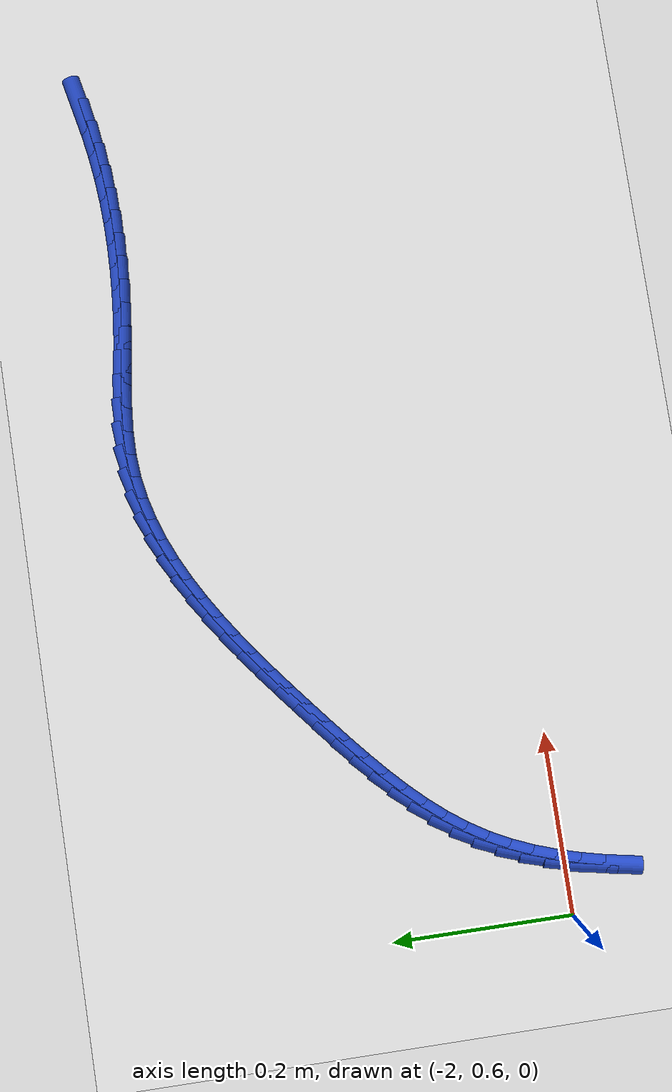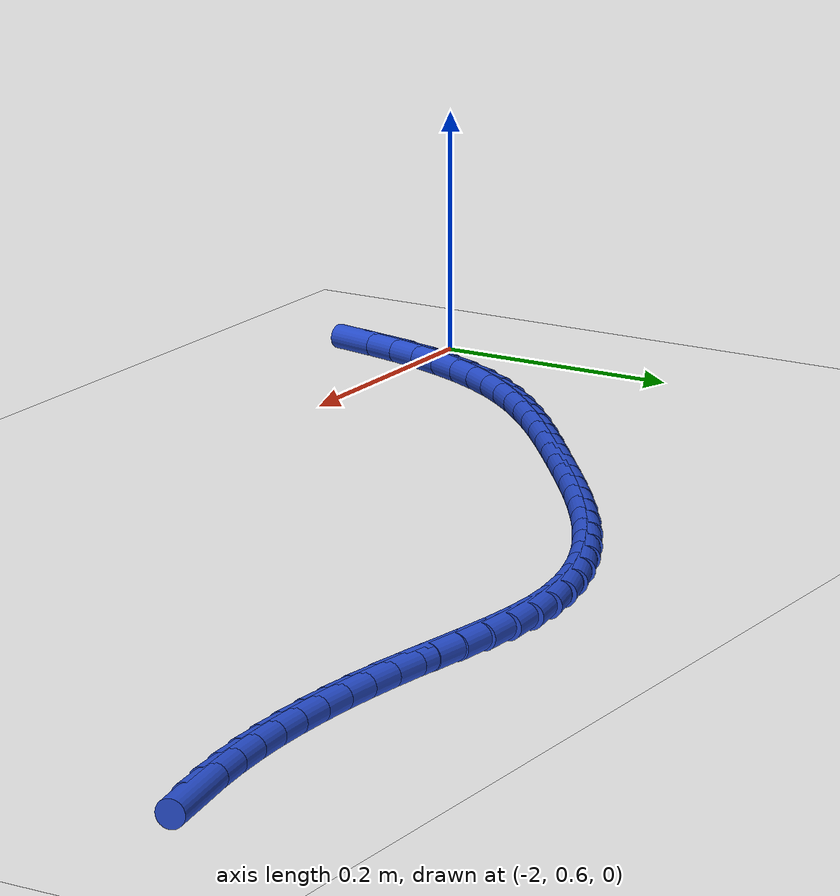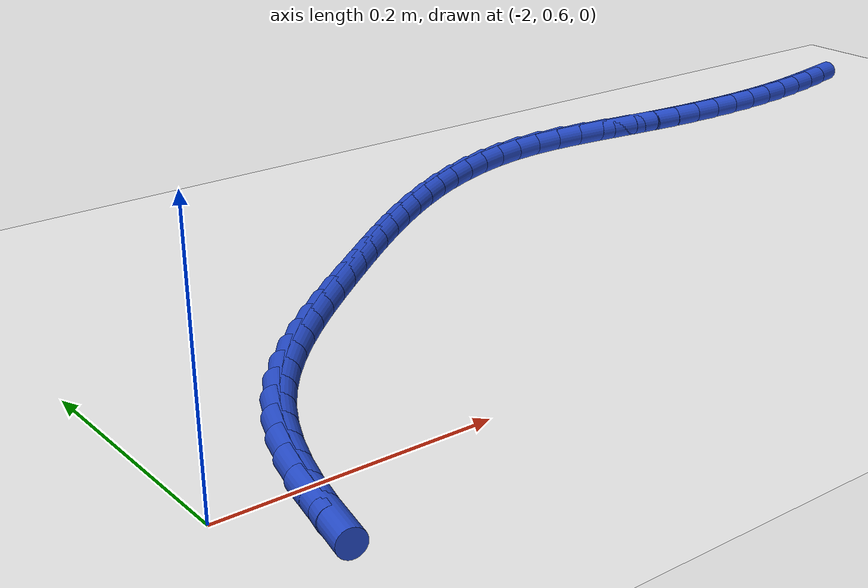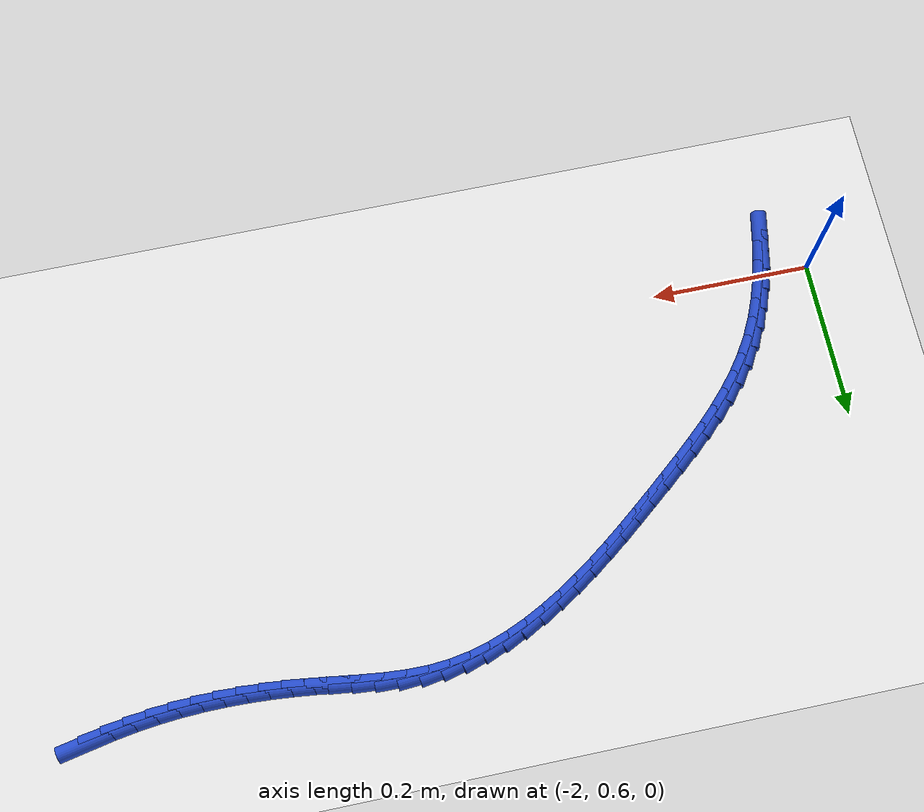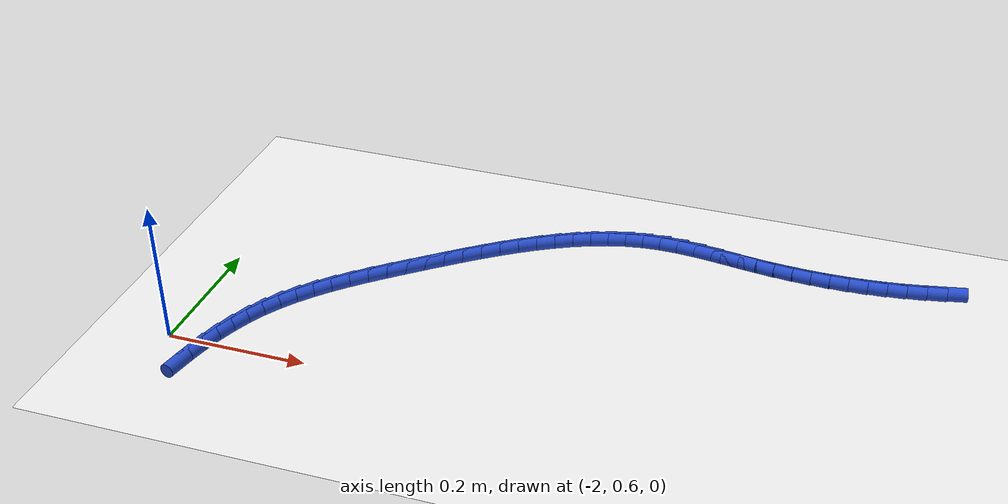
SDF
<sdf version="1.6">
 <world name="default">
  <model name="ground_plane">
   <static>1</static>
   <link name="link">
    <collision name="collision">
     <geometry><plane><normal>0 0 1</normal><size>100 100</size></plane></geometry>
     <surface><friction><ode><mu>100</mu><mu2>50</mu2></ode></friction></surface>
    </collision>
    <visual name="visual">
     <cast_shadows>0</cast_shadows>
     <geometry><plane><normal>0 0 1</normal><size>100 100</size></plane></geometry>
     <material>
      <script><uri>file://media/materials/scripts/gazebo.material</uri><name>Gazebo/WhiteGlow</name></script>
     </material>
    </visual>
   </link>
  </model>
  <model name="line">
   <link name="link_61">
    <pose>-1.0273132296756553 1.0084325810206245 0.01 0 1.57 0.20265592370087682</pose>
    <collision name="collision">
     <geometry><cylinder><radius>0.01</radius><length>0.08</length></cylinder></geometry>
    </collision>
    <visual name="visual">
     <material>
      <script><name>Gazebo/Blue</name><uri>file://media/materials/scripts/gazebo.material</uri></script>
     </material>
     <geometry><cylinder><radius>0.01</radius><length>0.08</length></cylinder></geometry>
    </visual>
   </link>
   <link name="link_62">
    <pose>-1.0547498974900416 1.0027949880581728 0.01 0 1.57 0.1620402487110609</pose>
    <collision name="collision">
     <geometry><cylinder><radius>0.01</radius><length>0.08</length></cylinder></geometry>
    </collision>
    <visual name="visual">
     <material>
      <script><name>Gazebo/Blue</name><uri>file://media/materials/scripts/gazebo.material</uri></script>
     </material>
     <geometry><cylinder><radius>0.01</radius><length>0.08</length></cylinder></geometry>
    </visual>
   </link>
   <link name="link_63">
    <pose>-1.081899579336812 0.9983567335462266 0.01 0 1.57 0.12192371084893064</pose>
    <collision name="collision">
     <geometry><cylinder><radius>0.01</radius><length>0.08</length></cylinder></geometry>
    </collision>
    <visual name="visual">
     <material>
      <script><name>Gazebo/Blue</name><uri>file://media/materials/scripts/gazebo.material</uri></script>
     </material>
     <geometry><cylinder><radius>0.01</radius><length>0.08</length></cylinder></geometry>
    </visual>
   </link>
   <link name="link_64">
    <pose>-1.1088112899800755 0.9950592020044183 0.01 0 1.57 0.08280756498412006</pose>
    <collision name="collision">
     <geometry><cylinder><radius>0.01</radius><length>0.08</length></cylinder></geometry>
    </collision>
    <visual name="visual">
     <material>
      <script><name>Gazebo/Blue</name><uri>file://media/materials/scripts/gazebo.material</uri></script>
     </material>
     <geometry><cylinder><radius>0.01</radius><length>0.08</length></cylinder></geometry>
    </visual>
   </link>
   <link name="link_65">
    <pose>-1.13553500399622 0.9928412043283688 0.01 0 1.57 0.045093416216564264</pose>
    <collision name="collision">
     <geometry><cylinder><radius>0.01</radius><length>0.08</length></cylinder></geometry>
    </collision>
    <visual name="visual">
     <material>
      <script><name>Gazebo/Blue</name><uri>file://media/materials/scripts/gazebo.material</uri></script>
     </material>
     <geometry><cylinder><radius>0.01</radius><length>0.08</length></cylinder></geometry>
    </visual>
   </link>
   <link name="link_66">
    <pose>-1.1621206959616333 0.9916415514136986 0.01 0 1.57 0.009151397897049707</pose>
    <collision name="collision">
     <geometry><cylinder><radius>0.01</radius><length>0.08</length></cylinder></geometry>
    </collision>
    <visual name="visual">
     <material>
      <script><name>Gazebo/Blue</name><uri>file://media/materials/scripts/gazebo.material</uri></script>
     </material>
     <geometry><cylinder><radius>0.01</radius><length>0.08</length></cylinder></geometry>
    </visual>
   </link>
   <link name="link_67">
    <pose>-1.1886183404527033 0.9913990541560282 0.01 0 1.57 -0.02469187692447737</pose>
    <collision name="collision">
     <geometry><cylinder><radius>0.01</radius><length>0.08</length></cylinder></geometry>
    </collision>
    <visual name="visual">
     <material>
      <script><name>Gazebo/Blue</name><uri>file://media/materials/scripts/gazebo.material</uri></script>
     </material>
     <geometry><cylinder><radius>0.01</radius><length>0.08</length></cylinder></geometry>
    </visual>
   </link>
   <link name="link_68">
    <pose>-1.2150779120458184 0.9920525234509785 0.01 0 1.57 -0.0561616533493815</pose>
    <collision name="collision">
     <geometry><cylinder><radius>0.01</radius><length>0.08</length></cylinder></geometry>
    </collision>
    <visual name="visual">
     <material>
      <script><name>Gazebo/Blue</name><uri>file://media/materials/scripts/gazebo.material</uri></script>
     </material>
     <geometry><cylinder><radius>0.01</radius><length>0.08</length></cylinder></geometry>
    </visual>
   </link>
   <link name="link_69">
    <pose>-1.2415493853173654 0.9935407701941695 0.01 0 1.57 -0.08503940108665022</pose>
    <collision name="collision">
     <geometry><cylinder><radius>0.01</radius><length>0.08</length></cylinder></geometry>
    </collision>
    <visual name="visual">
     <material>
      <script><name>Gazebo/Blue</name><uri>file://media/materials/scripts/gazebo.material</uri></script>
     </material>
     <geometry><cylinder><radius>0.01</radius><length>0.08</length></cylinder></geometry>
    </visual>
   </link>
   <link name="link_70">
    <pose>-1.268082734843734 0.995802605281223 0.01 0 1.57 -0.11116347393558543</pose>
    <collision name="collision">
     <geometry><cylinder><radius>0.01</radius><length>0.08</length></cylinder></geometry>
    </collision>
    <visual name="visual">
     <material>
      <script><name>Gazebo/Blue</name><uri>file://media/materials/scripts/gazebo.material</uri></script>
     </material>
     <geometry><cylinder><radius>0.01</radius><length>0.08</length></cylinder></geometry>
    </visual>
   </link>
   <link name="link_71">
    <pose>-1.2947279352013108 0.9987768396077585 0.01 0 1.57 -0.1317621910871081</pose>
    <collision name="collision">
     <geometry><cylinder><radius>0.01</radius><length>0.08</length></cylinder></geometry>
    </collision>
    <visual name="visual">
     <material>
      <script><name>Gazebo/Blue</name><uri>file://media/materials/scripts/gazebo.material</uri></script>
     </material>
     <geometry><cylinder><radius>0.01</radius><length>0.08</length></cylinder></geometry>
    </visual>
   </link>
   <link name="link_72">
    <pose>-1.3215118629424776 1.0023265147235456 0.01 0 1.57 -0.13445268535226676</pose>
    <collision name="collision">
     <geometry><cylinder><radius>0.01</radius><length>0.08</length></cylinder></geometry>
    </collision>
    <visual name="visual">
     <material>
      <script><name>Gazebo/Blue</name><uri>file://media/materials/scripts/gazebo.material</uri></script>
     </material>
     <geometry><cylinder><radius>0.01</radius><length>0.08</length></cylinder></geometry>
    </visual>
   </link>
   <link name="link_73">
    <pose>-1.3483524217706022 1.0059572043065252 0.01 0 1.57 -0.11567290773619718</pose>
    <collision name="collision">
     <geometry><cylinder><radius>0.01</radius><length>0.08</length></cylinder></geometry>
    </collision>
    <visual name="visual">
     <material>
      <script><name>Gazebo/Blue</name><uri>file://media/materials/scripts/gazebo.material</uri></script>
     </material>
     <geometry><cylinder><radius>0.01</radius><length>0.08</length></cylinder></geometry>
    </visual>
   </link>
   <link name="link_74">
    <pose>-1.3751354090244534 1.0090691622790233 0.01 0 1.57 -0.07477108986260889</pose>
    <collision name="collision">
     <geometry><cylinder><radius>0.01</radius><length>0.08</length></cylinder></geometry>
    </collision>
    <visual name="visual">
     <material>
      <script><name>Gazebo/Blue</name><uri>file://media/materials/scripts/gazebo.material</uri></script>
     </material>
     <geometry><cylinder><radius>0.01</radius><length>0.08</length></cylinder></geometry>
    </visual>
   </link>
   <link name="link_75">
    <pose>-1.4017466175091873 1.0110626276915926 0.01 0 1.57 -0.010453924081235516</pose>
    <collision name="collision">
     <geometry><cylinder><radius>0.01</radius><length>0.08</length></cylinder></geometry>
    </collision>
    <visual name="visual">
     <material>
      <script><name>Gazebo/Blue</name><uri>file://media/materials/scripts/gazebo.material</uri></script>
     </material>
     <geometry><cylinder><radius>0.01</radius><length>0.08</length></cylinder></geometry>
    </visual>
   </link>
   <link name="link_76">
    <pose>-1.4280718400299628 1.0113378395947872 0.01 0 1.57 0.07715570996890839</pose>
    <collision name="collision">
     <geometry><cylinder><radius>0.01</radius><length>0.08</length></cylinder></geometry>
    </collision>
    <visual name="visual">
     <material>
      <script><name>Gazebo/Blue</name><uri>file://media/materials/scripts/gazebo.material</uri></script>
     </material>
     <geometry><cylinder><radius>0.01</radius><length>0.08</length></cylinder></geometry>
    </visual>
   </link>
   <link name="link_77">
    <pose>-1.454003141399063 1.0093331119973958 0.01 0 1.57 0.17054202265992902</pose>
    <collision name="collision">
     <geometry><cylinder><radius>0.01</radius><length>0.08</length></cylinder></geometry>
    </collision>
    <visual name="visual">
     <material>
      <script><name>Gazebo/Blue</name><uri>file://media/materials/scripts/gazebo.material</uri></script>
     </material>
     <geometry><cylinder><radius>0.01</radius><length>0.08</length></cylinder></geometry>
    </visual>
   </link>
   <link name="link_78">
    <pose>-1.4795073961491638 1.004940900130101 0.01 0 1.57 0.25677172395007336</pose>
    <collision name="collision">
     <geometry><cylinder><radius>0.01</radius><length>0.08</length></cylinder></geometry>
    </collision>
    <visual name="visual">
     <material>
      <script><name>Gazebo/Blue</name><uri>file://media/materials/scripts/gazebo.material</uri></script>
     </material>
     <geometry><cylinder><radius>0.01</radius><length>0.08</length></cylinder></geometry>
    </visual>
   </link>
   <link name="link_79">
    <pose>-1.5046006597732302 0.9983522180376264 0.01 0 1.57 0.33466039808573206</pose>
    <collision name="collision">
     <geometry><cylinder><radius>0.01</radius><length>0.08</length></cylinder></geometry>
    </collision>
    <visual name="visual">
     <material>
      <script><name>Gazebo/Blue</name><uri>file://media/materials/scripts/gazebo.material</uri></script>
     </material>
     <geometry><cylinder><radius>0.01</radius><length>0.08</length></cylinder></geometry>
    </visual>
   </link>
   <link name="link_80">
    <pose>-1.5292998496302284 0.9897633118238033 0.01 0 1.57 0.40381991243170096</pose>
    <collision name="collision">
     <geometry><cylinder><radius>0.01</radius><length>0.08</length></cylinder></geometry>
    </collision>
    <visual name="visual">
     <material>
      <script><name>Gazebo/Blue</name><uri>file://media/materials/scripts/gazebo.material</uri></script>
     </material>
     <geometry><cylinder><radius>0.01</radius><length>0.08</length></cylinder></geometry>
    </visual>
   </link>
   <link name="link_81">
    <pose>-1.553621883079123 0.9793704275924625 0.01 0 1.57 0.46430573846014583</pose>
    <collision name="collision">
     <geometry><cylinder><radius>0.01</radius><length>0.08</length></cylinder></geometry>
    </collision>
    <visual name="visual">
     <material>
      <script><name>Gazebo/Blue</name><uri>file://media/materials/scripts/gazebo.material</uri></script>
     </material>
     <geometry><cylinder><radius>0.01</radius><length>0.08</length></cylinder></geometry>
    </visual>
   </link>
   <link name="link_82">
    <pose>-1.577583677478881 0.9673698114474358 0.01 0 1.57 0.5164555403328805</pose>
    <collision name="collision">
     <geometry><cylinder><radius>0.01</radius><length>0.08</length></cylinder></geometry>
    </collision>
    <visual name="visual">
     <material>
      <script><name>Gazebo/Blue</name><uri>file://media/materials/scripts/gazebo.material</uri></script>
     </material>
     <geometry><cylinder><radius>0.01</radius><length>0.08</length></cylinder></geometry>
    </visual>
   </link>
   <link name="link_83">
    <pose>-1.601202150188468 0.9539577094925543 0.01 0 1.57 0.560751331098009</pose>
    <collision name="collision">
     <geometry><cylinder><radius>0.01</radius><length>0.08</length></cylinder></geometry>
    </collision>
    <visual name="visual">
     <material>
      <script><name>Gazebo/Blue</name><uri>file://media/materials/scripts/gazebo.material</uri></script>
     </material>
     <geometry><cylinder><radius>0.01</radius><length>0.08</length></cylinder></geometry>
    </visual>
   </link>
   <link name="link_84">
    <pose>-1.6244942185668498 0.9393303678316489 0.01 0 1.57 0.5977173712214964</pose>
    <collision name="collision">
     <geometry><cylinder><radius>0.01</radius><length>0.08</length></cylinder></geometry>
    </collision>
    <visual name="visual">
     <material>
      <script><name>Gazebo/Blue</name><uri>file://media/materials/scripts/gazebo.material</uri></script>
     </material>
     <geometry><cylinder><radius>0.01</radius><length>0.08</length></cylinder></geometry>
    </visual>
   </link>
   <link name="link_85">
    <pose>-1.6474767999729925 0.9236840325685514 0.01 0 1.57 0.6278517717490463</pose>
    <collision name="collision">
     <geometry><cylinder><radius>0.01</radius><length>0.08</length></cylinder></geometry>
    </collision>
    <visual name="visual">
     <material>
      <script><name>Gazebo/Blue</name><uri>file://media/materials/scripts/gazebo.material</uri></script>
     </material>
     <geometry><cylinder><radius>0.01</radius><length>0.08</length></cylinder></geometry>
    </visual>
   </link>
   <link name="link_86">
    <pose>-1.670166811765861 0.907214949807092 0.01 0 1.57 0.6515839761527177</pose>
    <collision name="collision">
     <geometry><cylinder><radius>0.01</radius><length>0.08</length></cylinder></geometry>
    </collision>
    <visual name="visual">
     <material>
      <script><name>Gazebo/Blue</name><uri>file://media/materials/scripts/gazebo.material</uri></script>
     </material>
     <geometry><cylinder><radius>0.01</radius><length>0.08</length></cylinder></geometry>
    </visual>
   </link>
   <link name="link_87">
    <pose>-1.6925811713044219 0.8901193656511028 0.01 0 1.57 0.6692495489120589</pose>
    <collision name="collision">
     <geometry><cylinder><radius>0.01</radius><length>0.08</length></cylinder></geometry>
    </collision>
    <visual name="visual">
     <material>
      <script><name>Gazebo/Blue</name><uri>file://media/materials/scripts/gazebo.material</uri></script>
     </material>
     <geometry><cylinder><radius>0.01</radius><length>0.08</length></cylinder></geometry>
    </visual>
   </link>
   <link name="link_88">
    <pose>-1.714736795947641 0.8725935262044153 0.01 0 1.57 0.6810750842130537</pose>
    <collision name="collision">
     <geometry><cylinder><radius>0.01</radius><length>0.08</length></cylinder></geometry>
    </collision>
    <visual name="visual">
     <material>
      <script><name>Gazebo/Blue</name><uri>file://media/materials/scripts/gazebo.material</uri></script>
     </material>
     <geometry><cylinder><radius>0.01</radius><length>0.08</length></cylinder></geometry>
    </visual>
   </link>
   <link name="link_89">
    <pose>-1.7366506030544846 0.8548336775708599 0.01 0 1.57 0.6874262802952628</pose>
    <collision name="collision">
     <geometry><cylinder><radius>0.01</radius><length>0.08</length></cylinder></geometry>
    </collision>
    <visual name="visual">
     <material>
      <script><name>Gazebo/Blue</name><uri>file://media/materials/scripts/gazebo.material</uri></script>
     </material>
     <geometry><cylinder><radius>0.01</radius><length>0.08</length></cylinder></geometry>
    </visual>
   </link>
   <link name="link_90">
    <pose>-1.758335656052923 0.8370298504426262 0.01 0 1.57 0.6949877398612212</pose>
    <collision name="collision">
     <geometry><cylinder><radius>0.01</radius><length>0.08</length></cylinder></geometry>
    </collision>
    <visual name="visual">
     <material>
      <script><name>Gazebo/Blue</name><uri>file://media/materials/scripts/gazebo.material</uri></script>
     </material>
     <geometry><cylinder><radius>0.01</radius><length>0.08</length></cylinder></geometry>
    </visual>
   </link>
   <link name="link_91">
    <pose>-1.7797059228613126 0.8192122596291301 0.01 0 1.57 0.711034737626404</pose>
    <collision name="collision">
     <geometry><cylinder><radius>0.01</radius><length>0.08</length></cylinder></geometry>
    </collision>
    <visual name="visual">
     <material>
      <script><name>Gazebo/Blue</name><uri>file://media/materials/scripts/gazebo.material</uri></script>
     </material>
     <geometry><cylinder><radius>0.01</radius><length>0.08</length></cylinder></geometry>
    </visual>
   </link>
   <link name="link_92">
    <pose>-1.8005700940649234 0.8012413343461849 0.01 0 1.57 0.7362717177052687</pose>
    <collision name="collision">
     <geometry><cylinder><radius>0.01</radius><length>0.08</length></cylinder></geometry>
    </collision>
    <visual name="visual">
     <material>
      <script><name>Gazebo/Blue</name><uri>file://media/materials/scripts/gazebo.material</uri></script>
     </material>
     <geometry><cylinder><radius>0.01</radius><length>0.08</length></cylinder></geometry>
    </visual>
   </link>
   <link name="link_93">
    <pose>-1.8207317685338784 0.7829692921665715 0.01 0 1.57 0.7711342003090943</pose>
    <collision name="collision">
     <geometry><cylinder><radius>0.01</radius><length>0.08</length></cylinder></geometry>
    </collision>
    <visual name="visual">
     <material>
      <script><name>Gazebo/Blue</name><uri>file://media/materials/scripts/gazebo.material</uri></script>
     </material>
     <geometry><cylinder><radius>0.01</radius><length>0.08</length></cylinder></geometry>
    </visual>
   </link>
   <link name="link_94">
    <pose>-1.8399945451383004 0.7642483506630705 0.01 0 1.57 0.8160712813663612</pose>
    <collision name="collision">
     <geometry><cylinder><radius>0.01</radius><length>0.08</length></cylinder></geometry>
    </collision>
    <visual name="visual">
     <material>
      <script><name>Gazebo/Blue</name><uri>file://media/materials/scripts/gazebo.material</uri></script>
     </material>
     <geometry><cylinder><radius>0.01</radius><length>0.08</length></cylinder></geometry>
    </visual>
   </link>
   <link name="link_95">
    <pose>-1.8581620227483118 0.7449307274084629 0.01 0 1.57 0.8714465021507928</pose>
    <collision name="collision">
     <geometry><cylinder><radius>0.01</radius><length>0.08</length></cylinder></geometry>
    </collision>
    <visual name="visual">
     <material>
      <script><name>Gazebo/Blue</name><uri>file://media/materials/scripts/gazebo.material</uri></script>
     </material>
     <geometry><cylinder><radius>0.01</radius><length>0.08</length></cylinder></geometry>
    </visual>
   </link>
   <link name="link_96">
    <pose>-1.8750378002340358 0.7248686399755295 0.01 0 1.57 0.937390993661738</pose>
    <collision name="collision">
     <geometry><cylinder><radius>0.01</radius><length>0.08</length></cylinder></geometry>
    </collision>
    <visual name="visual">
     <material>
      <script><name>Gazebo/Blue</name><uri>file://media/materials/scripts/gazebo.material</uri></script>
     </material>
     <geometry><cylinder><radius>0.01</radius><length>0.08</length></cylinder></geometry>
    </visual>
   </link>
   <link name="link_97">
    <pose>-1.8904254764655954 0.7039143059370515 0.01 0 1.57 1.0135525115639326</pose>
    <collision name="collision">
     <geometry><cylinder><radius>0.01</radius><length>0.08</length></cylinder></geometry>
    </collision>
    <visual name="visual">
     <material>
      <script><name>Gazebo/Blue</name><uri>file://media/materials/scripts/gazebo.material</uri></script>
     </material>
     <geometry><cylinder><radius>0.01</radius><length>0.08</length></cylinder></geometry>
    </visual>
   </link>
   <link name="link_98">
    <pose>-1.9041299015917752 0.6819209501507796 0.01 0 1.57 1.0935055620637208</pose>
    <collision name="collision">
     <geometry><cylinder><radius>0.01</radius><length>0.08</length></cylinder></geometry>
    </collision>
    <visual name="visual">
     <material>
      <script><name>Gazebo/Blue</name><uri>file://media/materials/scripts/gazebo.material</uri></script>
     </material>
     <geometry><cylinder><radius>0.01</radius><length>0.08</length></cylinder></geometry>
    </visual>
   </link>
   <link name="link_99">
    <pose>-1.9160700153810992 0.6588336401332906 0.01 0 1.57 1.166534723665492</pose>
    <collision name="collision">
     <geometry><cylinder><radius>0.01</radius><length>0.08</length></cylinder></geometry>
    </collision>
    <visual name="visual">
     <material>
      <script><name>Gazebo/Blue</name><uri>file://media/materials/scripts/gazebo.material</uri></script>
     </material>
     <geometry><cylinder><radius>0.01</radius><length>0.08</length></cylinder></geometry>
    </visual>
   </link>
   <link name="link_100">
    <pose>-1.9263686591582339 0.6347615850741484 0.01 0 1.57 1.2314279985916046</pose>
    <collision name="collision">
     <geometry><cylinder><radius>0.01</radius><length>0.08</length></cylinder></geometry>
    </collision>
    <visual name="visual">
     <material>
      <script><name>Gazebo/Blue</name><uri>file://media/materials/scripts/gazebo.material</uri></script>
     </material>
     <geometry><cylinder><radius>0.01</radius><length>0.08</length></cylinder></geometry>
    </visual>
   </link>
   <link name="link_101">
    <pose>-1.9351698091799163 0.6098310078786248 0.01 0 1.57 1.2883448775931567</pose>
    <collision name="collision">
     <geometry><cylinder><radius>0.01</radius><length>0.08</length></cylinder></geometry>
    </collision>
    <visual name="visual">
     <material>
      <script><name>Gazebo/Blue</name><uri>file://media/materials/scripts/gazebo.material</uri></script>
     </material>
     <geometry><cylinder><radius>0.01</radius><length>0.08</length></cylinder></geometry>
    </visual>
   </link>
   <link name="link_102">
    <pose>-1.942617441702881 0.5841681314519908 0.01 0 1.57 1.3376448138453758</pose>
    <collision name="collision">
     <geometry><cylinder><radius>0.01</radius><length>0.08</length></cylinder></geometry>
    </collision>
    <visual name="visual">
     <material>
      <script><name>Gazebo/Blue</name><uri>file://media/materials/scripts/gazebo.material</uri></script>
     </material>
     <geometry><cylinder><radius>0.01</radius><length>0.08</length></cylinder></geometry>
    </visual>
   </link>
   <link name="link_103">
    <pose>-1.9488555329838653 0.5578991786995182 0.01 0 1.57 1.379779867407019</pose>
    <collision name="collision">
     <geometry><cylinder><radius>0.01</radius><length>0.08</length></cylinder></geometry>
    </collision>
    <visual name="visual">
     <material>
      <script><name>Gazebo/Blue</name><uri>file://media/materials/scripts/gazebo.material</uri></script>
     </material>
     <geometry><cylinder><radius>0.01</radius><length>0.08</length></cylinder></geometry>
    </visual>
   </link>
  </model>
 </world>
</sdf>
